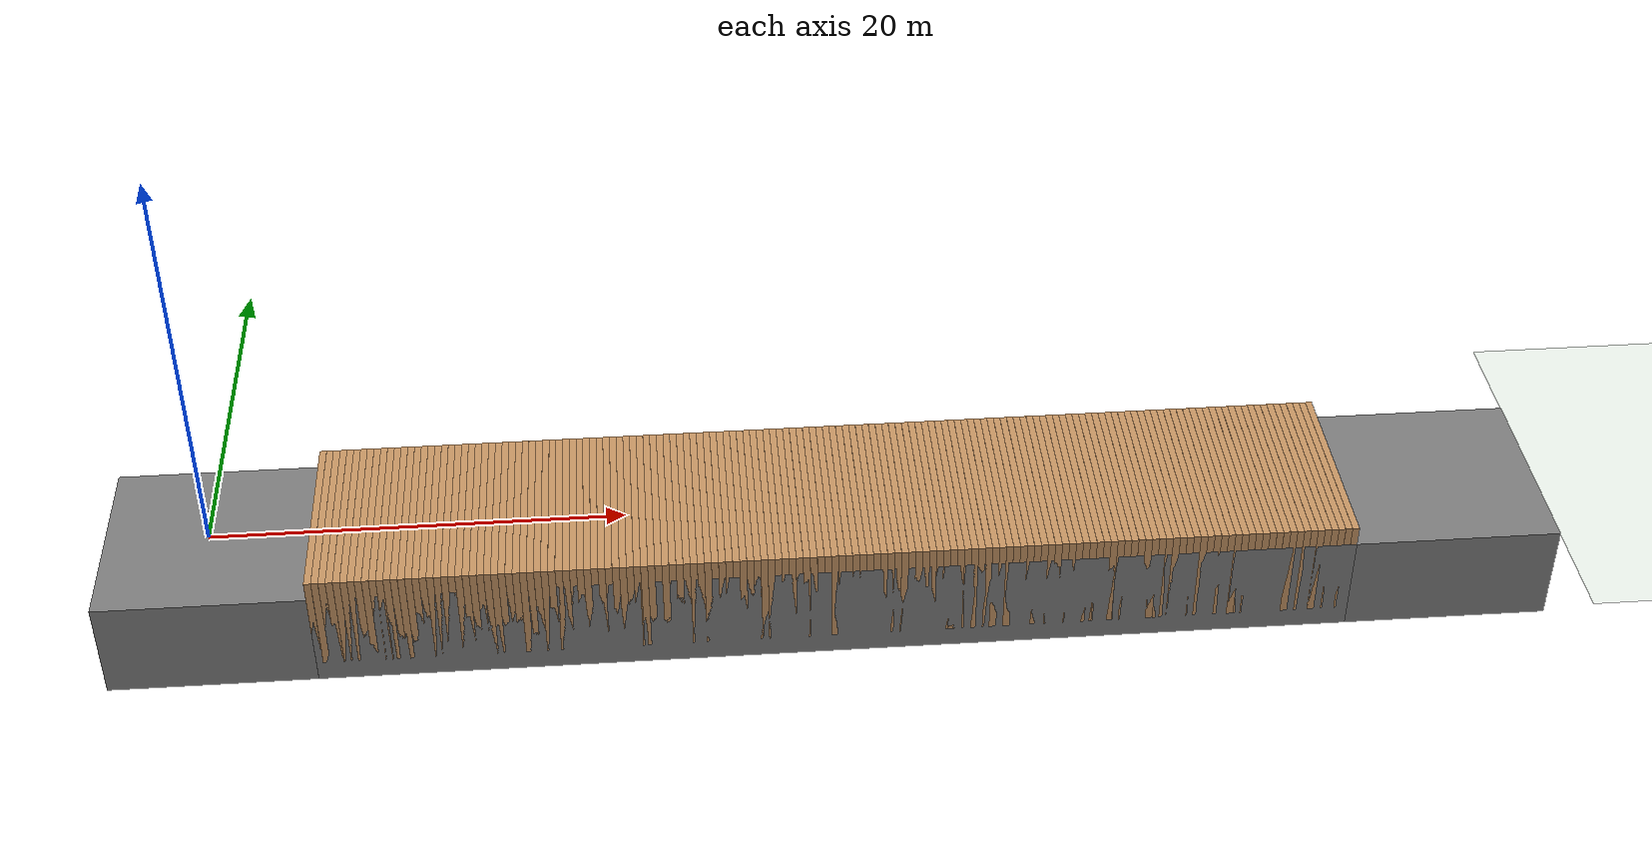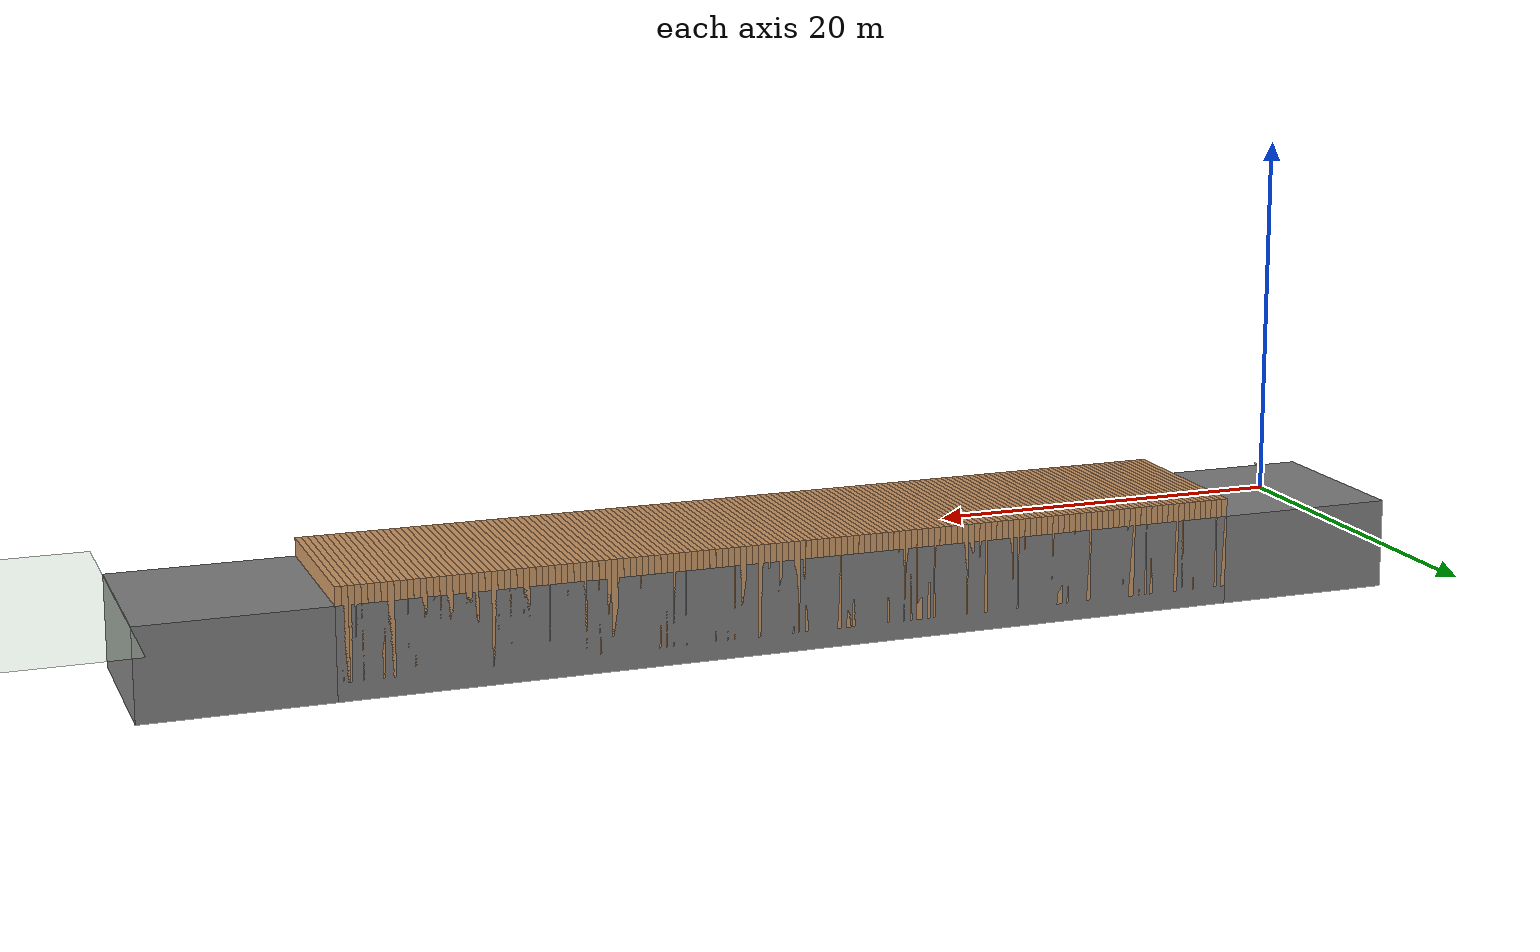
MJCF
<mujoco model="humanoid">
    <compiler angle="degree" inertiafromgeom="true"/>
    <default>
        <joint armature="1" damping="1" limited="true"/>
        <geom conaffinity="1" condim="1" contype="1" margin="0.001" material="geom" rgba="0.8 0.6 .4 1"/>
        <motor ctrllimited="true" ctrlrange="-.4 .4"/>
    </default>
    <option integrator="RK4" iterations="50" solver="PGS" timestep="0.003">
    </option>
    <size nkey="5" nuser_geom="1"/>
    <visual>
        <map fogend="5" fogstart="3"/>
    </visual>
    <asset>
        <texture builtin="gradient" height="100" rgb1=".4 .5 .6" rgb2="0 0 0" type="skybox" width="100"/>
        <texture builtin="flat" height="1278" mark="cross" markrgb="1 1 1" name="texgeom" random="0.01" rgb1="0.8 0.6 0.4" rgb2="0.8 0.6 0.4" type="cube" width="127"/>

        <texture name="texplane_geom" type="cube" mark="cross" builtin="flat" markrgb="0.9 0.9 0.9" rgb1="0.50 0.50 0.50" rgb2="0.50 0.50 0.50" width="512" height="512"/>
        <texture name="texplane" type="2d" builtin="checker" rgb1="0.50 0.50 0.50" rgb2="0.51 0.51 0.51" width="512" height="512"/>
        <material name="MatPlane" reflectance="0.0" shininess="0.0" specular="0.0" texrepeat="60 10" texture="texplane" />

        <material name="geom" texture="texgeom" texuniform="true"/>
        <material name="geom2" texture="texplane" texuniform="true"/>
        <material name="geom3" texture="texplane_geom" texuniform="true" rgba="0.5 0.5 0.5 1"/>
    </asset>
    <worldbody>
        <site name="point_marker0"  pos="0 0 0" size="0.02" rgba="1 0 0 1" type="sphere"/>
        <site name="point_marker1"  pos="0 0 0" size="0.02" rgba="1 0 0 1" type="sphere"/>
        <site name="point_marker2"  pos="0 0 0" size="0.02" rgba="1 0 0 1" type="sphere"/>
        <site name="point_marker3"  pos="0 0 0" size="0.02" rgba="1 0 0 1" type="sphere"/>
        <site name="point_marker4"  pos="0 0 0" size="0.02" rgba="1 0 0 1" type="sphere"/>
        <site name="point_marker5"  pos="0 0 0" size="0.02" rgba="1 0 0 1" type="sphere"/>
        <site name="point_marker6"  pos="0 0 0" size="0.02" rgba="1 0 0 1" type="sphere"/>
        <site name="point_marker7"  pos="0 0 0" size="0.02" rgba="1 0 0 1" type="sphere"/>
        <site name="point_marker8"  pos="0 0 0" size="0.02" rgba="1 0 0 1" type="sphere"/>
        <site name="point_marker9"  pos="0 0 0" size="0.02" rgba="1 0 0 1" type="sphere"/>
        <site name="point_marker10" pos="0 0 0" size="0.02" rgba="1 0 0 1" type="sphere"/>
        <site name="point_marker11" pos="0 0 0" size="0.02" rgba="1 0 0 1" type="sphere"/>
        <site name="point_marker12" pos="0 0 0" size="0.02" rgba="1 0 0 1" type="sphere"/>
        <site name="point_marker13" pos="0 0 0" size="0.02" rgba="1 0 0 1" type="sphere"/>
        <site name="point_marker14" pos="0 0 0" size="0.02" rgba="1 0 0 1" type="sphere"/>
        <site name="point_marker15" pos="0 0 0" size="0.02" rgba="1 0 0 1" type="sphere"/>
        <site name="point_marker16" pos="0 0 0" size="0.02" rgba="1 0 0 1" type="sphere"/>
        <site name="point_marker17" pos="0 0 0" size="0.02" rgba="1 0 0 1" type="sphere"/>
        <site name="point_marker18" pos="0 0 0" size="0.02" rgba="1 0 0 1" type="sphere"/>
        <site name="point_marker19" pos="0 0 0" size="0.02" rgba="1 0 0 1" type="sphere"/>
        <site name="point_marker20" pos="0 0 0" size="0.02" rgba="1 0 0 1" type="sphere"/>
        <site name="point_marker21" pos="0 0 0" size="0.02" rgba="1 0 0 1" type="sphere"/>
        <site name="point_marker22" pos="0 0 0" size="0.02" rgba="1 0 0 1" type="sphere"/>
        <site name="point_marker23" pos="0 0 0" size="0.02" rgba="1 0 0 1" type="sphere"/>
        <site name="point_marker24" pos="0 0 0" size="0.02" rgba="1 0 0 1" type="sphere"/>
        <site name="point_marker25" pos="0 0 0" size="0.02" rgba="1 0 0 1" type="sphere"/>
        <site name="point_marker26" pos="0 0 0" size="0.02" rgba="1 0 0 1" type="sphere"/>
        <site name="point_marker27" pos="0 0 0" size="0.02" rgba="1 0 0 1" type="sphere"/>
        <site name="point_marker28" pos="0 0 0" size="0.02" rgba="1 0 0 1" type="sphere"/>
        <site name="point_marker29" pos="0 0 0" size="0.02" rgba="1 0 0 1" type="sphere"/>

        <!-- Floor -->
        <light cutoff="100" diffuse="1 1 1" dir="-0 0 -1.3" directional="true" exponent="1" pos="0 0 1.3" specular=".1 .1 .1"/>
        <geom condim="3" friction="1 .1 .1" material="MatPlane" name="floor" pos="85 0 0" rgba="0.8 0.9 0.8 1" size="20 10 0.125" type="plane" group="1"/>

        <geom name="wall_l" type="box" material="geom2" pos="30 6 2.5" size="35 1 15" friction="1 .1 .1" group="1" contype="1" conaffinity="1" rgba="0 0 0 0."/>
        <geom name="wall_r" type="box" material="geom2" pos="30 -6 2.5" size="35 1 15" friction="1 .1 .1" group="1" contype="1" conaffinity="1" rgba="0 0 0 0"/>
        <geom name="lidar_block_l" type="box" material="geom2" pos="30 10 17" size="35 5 0.5" friction="1 .1 .1" group="1" contype="1" conaffinity="1" rgba="0 0 0 0"/>
        <geom name="lidar_block_r" type="box" material="geom2" pos="30 -10 17" size="35 5 0.5" friction="1 .1 .1" group="1" contype="1" conaffinity="1" rgba="0 0 0 0"/>
        <geom name="platform_start" type="box" material="geom2" pos="0 0 -2.5" size="5 5 2.5" friction="1 .1 .1" group="1" contype="1" conaffinity="1" condim="3" rgba="0.50 0.50 0.50 1"/>
        <geom name="platform_middle" type="box" material="geom2" pos="30 0 -2.5" size="25 5 2.5" friction="1 .1 .1" group="1" contype="1" conaffinity="1" condim="3" rgba="0.50 0.50 0.50 1"/>
        <geom name="platform_end" type="box" material="geom2" pos="60 0 -2.5" size="5 5 2.5" friction="1 .1 .1" group="1" contype="1" conaffinity="1" condim="3" rgba="0.50 0.50 0.50 1"/>

        <!-- element -->
        <geom name="element_0"   type="box" pos="5.166  0 -1.5" size="0.166 5 2.5" friction="1 .1 .1" group="2" contype="1" material="geom3" conaffinity="1" margin="0.01" solref="0.002 1" solimp="0.9 0.95 0.001"/>
        <geom name="element_1"   type="box" pos="5.500  0 -1.5" size="0.166 5 2.5" friction="1 .1 .1" group="2" contype="1" material="geom3" conaffinity="1" margin="0.01" solref="0.002 1" solimp="0.9 0.95 0.001"/>
        <geom name="element_2"   type="box" pos="5.833  0 -1.5" size="0.166 5 2.5" friction="1 .1 .1" group="2" contype="1" material="geom3" conaffinity="1" margin="0.01" solref="0.002 1" solimp="0.9 0.95 0.001"/>
        <geom name="element_3"   type="box" pos="6.166  0 -1.5" size="0.166 5 2.5" friction="1 .1 .1" group="2" contype="1" material="geom3" conaffinity="1" margin="0.01" solref="0.002 1" solimp="0.9 0.95 0.001"/>
        <geom name="element_4"   type="box" pos="6.500  0 -1.5" size="0.166 5 2.5" friction="1 .1 .1" group="2" contype="1" material="geom3" conaffinity="1" margin="0.01" solref="0.002 1" solimp="0.9 0.95 0.001"/>
        <geom name="element_5"   type="box" pos="6.833  0 -1.5" size="0.166 5 2.5" friction="1 .1 .1" group="2" contype="1" material="geom3" conaffinity="1" margin="0.01" solref="0.002 1" solimp="0.9 0.95 0.001"/>
        <geom name="element_6"   type="box" pos="7.166  0 -1.5" size="0.166 5 2.5" friction="1 .1 .1" group="2" contype="1" material="geom3" conaffinity="1" margin="0.01" solref="0.002 1" solimp="0.9 0.95 0.001"/>
        <geom name="element_7"   type="box" pos="7.500  0 -1.5" size="0.166 5 2.5" friction="1 .1 .1" group="2" contype="1" material="geom3" conaffinity="1" margin="0.01" solref="0.002 1" solimp="0.9 0.95 0.001"/>
        <geom name="element_8"   type="box" pos="7.833  0 -1.5" size="0.166 5 2.5" friction="1 .1 .1" group="2" contype="1" material="geom3" conaffinity="1" margin="0.01" solref="0.002 1" solimp="0.9 0.95 0.001"/>
        <geom name="element_9"   type="box" pos="8.166  0 -1.5" size="0.166 5 2.5" friction="1 .1 .1" group="2" contype="1" material="geom3" conaffinity="1" margin="0.01" solref="0.002 1" solimp="0.9 0.95 0.001"/>
        <geom name="element_10"  type="box" pos="8.500  0 -1.5" size="0.166 5 2.5" friction="1 .1 .1" group="2" contype="1" material="geom3" conaffinity="1" margin="0.01" solref="0.002 1" solimp="0.9 0.95 0.001"/>
        <geom name="element_11"  type="box" pos="8.833  0 -1.5" size="0.166 5 2.5" friction="1 .1 .1" group="2" contype="1" material="geom3" conaffinity="1" margin="0.01" solref="0.002 1" solimp="0.9 0.95 0.001"/>
        <geom name="element_12"  type="box" pos="9.166  0 -1.5" size="0.166 5 2.5" friction="1 .1 .1" group="2" contype="1" material="geom3" conaffinity="1" margin="0.01" solref="0.002 1" solimp="0.9 0.95 0.001"/>
        <geom name="element_13"  type="box" pos="9.500  0 -1.5" size="0.166 5 2.5" friction="1 .1 .1" group="2" contype="1" material="geom3" conaffinity="1" margin="0.01" solref="0.002 1" solimp="0.9 0.95 0.001"/>
        <geom name="element_14"  type="box" pos="9.833  0 -1.5" size="0.166 5 2.5" friction="1 .1 .1" group="2" contype="1" material="geom3" conaffinity="1" margin="0.01" solref="0.002 1" solimp="0.9 0.95 0.001"/>
        <geom name="element_15"  type="box" pos="10.166 0 -1.5" size="0.166 5 2.5" friction="1 .1 .1" group="2" contype="1" material="geom3" conaffinity="1" margin="0.01" solref="0.002 1" solimp="0.9 0.95 0.001"/>
        <geom name="element_16"  type="box" pos="10.500 0 -1.5" size="0.166 5 2.5" friction="1 .1 .1" group="2" contype="1" material="geom3" conaffinity="1" margin="0.01" solref="0.002 1" solimp="0.9 0.95 0.001"/>
        <geom name="element_17"  type="box" pos="10.833 0 -1.5" size="0.166 5 2.5" friction="1 .1 .1" group="2" contype="1" material="geom3" conaffinity="1" margin="0.01" solref="0.002 1" solimp="0.9 0.95 0.001"/>
        <geom name="element_18"  type="box" pos="11.166 0 -1.5" size="0.166 5 2.5" friction="1 .1 .1" group="2" contype="1" material="geom3" conaffinity="1" margin="0.01" solref="0.002 1" solimp="0.9 0.95 0.001"/>
        <geom name="element_19"  type="box" pos="11.500 0 -1.5" size="0.166 5 2.5" friction="1 .1 .1" group="2" contype="1" material="geom3" conaffinity="1" margin="0.01" solref="0.002 1" solimp="0.9 0.95 0.001"/>
        <geom name="element_20"  type="box" pos="11.833 0 -1.5" size="0.166 5 2.5" friction="1 .1 .1" group="2" contype="1" material="geom3" conaffinity="1" margin="0.01" solref="0.002 1" solimp="0.9 0.95 0.001"/>
        <geom name="element_21"  type="box" pos="12.166 0 -1.5" size="0.166 5 2.5" friction="1 .1 .1" group="2" contype="1" material="geom3" conaffinity="1" margin="0.01" solref="0.002 1" solimp="0.9 0.95 0.001"/>
        <geom name="element_22"  type="box" pos="12.500 0 -1.5" size="0.166 5 2.5" friction="1 .1 .1" group="2" contype="1" material="geom3" conaffinity="1" margin="0.01" solref="0.002 1" solimp="0.9 0.95 0.001"/>
        <geom name="element_23"  type="box" pos="12.833 0 -1.5" size="0.166 5 2.5" friction="1 .1 .1" group="2" contype="1" material="geom3" conaffinity="1" margin="0.01" solref="0.002 1" solimp="0.9 0.95 0.001"/>
        <geom name="element_24"  type="box" pos="13.166 0 -1.5" size="0.166 5 2.5" friction="1 .1 .1" group="2" contype="1" material="geom3" conaffinity="1" margin="0.01" solref="0.002 1" solimp="0.9 0.95 0.001"/>
        <geom name="element_25"  type="box" pos="13.500 0 -1.5" size="0.166 5 2.5" friction="1 .1 .1" group="2" contype="1" material="geom3" conaffinity="1" margin="0.01" solref="0.002 1" solimp="0.9 0.95 0.001"/>
        <geom name="element_26"  type="box" pos="13.833 0 -1.5" size="0.166 5 2.5" friction="1 .1 .1" group="2" contype="1" material="geom3" conaffinity="1" margin="0.01" solref="0.002 1" solimp="0.9 0.95 0.001"/>
        <geom name="element_27"  type="box" pos="14.166 0 -1.5" size="0.166 5 2.5" friction="1 .1 .1" group="2" contype="1" material="geom3" conaffinity="1" margin="0.01" solref="0.002 1" solimp="0.9 0.95 0.001"/>
        <geom name="element_28"  type="box" pos="14.500 0 -1.5" size="0.166 5 2.5" friction="1 .1 .1" group="2" contype="1" material="geom3" conaffinity="1" margin="0.01" solref="0.002 1" solimp="0.9 0.95 0.001"/>
        <geom name="element_29"  type="box" pos="14.833 0 -1.5" size="0.166 5 2.5" friction="1 .1 .1" group="2" contype="1" material="geom3" conaffinity="1" margin="0.01" solref="0.002 1" solimp="0.9 0.95 0.001"/>
        <geom name="element_30"  type="box" pos="15.166 0 -1.5" size="0.166 5 2.5" friction="1 .1 .1" group="2" contype="1" material="geom3" conaffinity="1" margin="0.01" solref="0.002 1" solimp="0.9 0.95 0.001"/>
        <geom name="element_31"  type="box" pos="15.500 0 -1.5" size="0.166 5 2.5" friction="1 .1 .1" group="2" contype="1" material="geom3" conaffinity="1" margin="0.01" solref="0.002 1" solimp="0.9 0.95 0.001"/>
        <geom name="element_32"  type="box" pos="15.833 0 -1.5" size="0.166 5 2.5" friction="1 .1 .1" group="2" contype="1" material="geom3" conaffinity="1" margin="0.01" solref="0.002 1" solimp="0.9 0.95 0.001"/>
        <geom name="element_33"  type="box" pos="16.166 0 -1.5" size="0.166 5 2.5" friction="1 .1 .1" group="2" contype="1" material="geom3" conaffinity="1" margin="0.01" solref="0.002 1" solimp="0.9 0.95 0.001"/>
        <geom name="element_34"  type="box" pos="16.500 0 -1.5" size="0.166 5 2.5" friction="1 .1 .1" group="2" contype="1" material="geom3" conaffinity="1" margin="0.01" solref="0.002 1" solimp="0.9 0.95 0.001"/>
        <geom name="element_35"  type="box" pos="16.833 0 -1.5" size="0.166 5 2.5" friction="1 .1 .1" group="2" contype="1" material="geom3" conaffinity="1" margin="0.01" solref="0.002 1" solimp="0.9 0.95 0.001"/>
        <geom name="element_36"  type="box" pos="17.166 0 -1.5" size="0.166 5 2.5" friction="1 .1 .1" group="2" contype="1" material="geom3" conaffinity="1" margin="0.01" solref="0.002 1" solimp="0.9 0.95 0.001"/>
        <geom name="element_37"  type="box" pos="17.500 0 -1.5" size="0.166 5 2.5" friction="1 .1 .1" group="2" contype="1" material="geom3" conaffinity="1" margin="0.01" solref="0.002 1" solimp="0.9 0.95 0.001"/>
        <geom name="element_38"  type="box" pos="17.833 0 -1.5" size="0.166 5 2.5" friction="1 .1 .1" group="2" contype="1" material="geom3" conaffinity="1" margin="0.01" solref="0.002 1" solimp="0.9 0.95 0.001"/>
        <geom name="element_39"  type="box" pos="18.166 0 -1.5" size="0.166 5 2.5" friction="1 .1 .1" group="2" contype="1" material="geom3" conaffinity="1" margin="0.01" solref="0.002 1" solimp="0.9 0.95 0.001"/>
        <geom name="element_40"  type="box" pos="18.500 0 -1.5" size="0.166 5 2.5" friction="1 .1 .1" group="2" contype="1" material="geom3" conaffinity="1" margin="0.01" solref="0.002 1" solimp="0.9 0.95 0.001"/>
        <geom name="element_41"  type="box" pos="18.833 0 -1.5" size="0.166 5 2.5" friction="1 .1 .1" group="2" contype="1" material="geom3" conaffinity="1" margin="0.01" solref="0.002 1" solimp="0.9 0.95 0.001"/>
        <geom name="element_42"  type="box" pos="19.166 0 -1.5" size="0.166 5 2.5" friction="1 .1 .1" group="2" contype="1" material="geom3" conaffinity="1" margin="0.01" solref="0.002 1" solimp="0.9 0.95 0.001"/>
        <geom name="element_43"  type="box" pos="19.500 0 -1.5" size="0.166 5 2.5" friction="1 .1 .1" group="2" contype="1" material="geom3" conaffinity="1" margin="0.01" solref="0.002 1" solimp="0.9 0.95 0.001"/>
        <geom name="element_44"  type="box" pos="19.833 0 -1.5" size="0.166 5 2.5" friction="1 .1 .1" group="2" contype="1" material="geom3" conaffinity="1" margin="0.01" solref="0.002 1" solimp="0.9 0.95 0.001"/>
        <geom name="element_45"  type="box" pos="20.166 0 -1.5" size="0.166 5 2.5" friction="1 .1 .1" group="2" contype="1" material="geom3" conaffinity="1" margin="0.01" solref="0.002 1" solimp="0.9 0.95 0.001"/>
        <geom name="element_46"  type="box" pos="20.500 0 -1.5" size="0.166 5 2.5" friction="1 .1 .1" group="2" contype="1" material="geom3" conaffinity="1" margin="0.01" solref="0.002 1" solimp="0.9 0.95 0.001"/>
        <geom name="element_47"  type="box" pos="20.833 0 -1.5" size="0.166 5 2.5" friction="1 .1 .1" group="2" contype="1" material="geom3" conaffinity="1" margin="0.01" solref="0.002 1" solimp="0.9 0.95 0.001"/>
        <geom name="element_48"  type="box" pos="21.166 0 -1.5" size="0.166 5 2.5" friction="1 .1 .1" group="2" contype="1" material="geom3" conaffinity="1" margin="0.01" solref="0.002 1" solimp="0.9 0.95 0.001"/>
        <geom name="element_49"  type="box" pos="21.500 0 -1.5" size="0.166 5 2.5" friction="1 .1 .1" group="2" contype="1" material="geom3" conaffinity="1" margin="0.01" solref="0.002 1" solimp="0.9 0.95 0.001"/>
        <geom name="element_50"  type="box" pos="21.833 0 -1.5" size="0.166 5 2.5" friction="1 .1 .1" group="2" contype="1" material="geom3" conaffinity="1" margin="0.01" solref="0.002 1" solimp="0.9 0.95 0.001"/>
        <geom name="element_51"  type="box" pos="22.166 0 -1.5" size="0.166 5 2.5" friction="1 .1 .1" group="2" contype="1" material="geom3" conaffinity="1" margin="0.01" solref="0.002 1" solimp="0.9 0.95 0.001"/>
        <geom name="element_52"  type="box" pos="22.500 0 -1.5" size="0.166 5 2.5" friction="1 .1 .1" group="2" contype="1" material="geom3" conaffinity="1" margin="0.01" solref="0.002 1" solimp="0.9 0.95 0.001"/>
        <geom name="element_53"  type="box" pos="22.833 0 -1.5" size="0.166 5 2.5" friction="1 .1 .1" group="2" contype="1" material="geom3" conaffinity="1" margin="0.01" solref="0.002 1" solimp="0.9 0.95 0.001"/>
        <geom name="element_54"  type="box" pos="23.166 0 -1.5" size="0.166 5 2.5" friction="1 .1 .1" group="2" contype="1" material="geom3" conaffinity="1" margin="0.01" solref="0.002 1" solimp="0.9 0.95 0.001"/>
        <geom name="element_55"  type="box" pos="23.500 0 -1.5" size="0.166 5 2.5" friction="1 .1 .1" group="2" contype="1" material="geom3" conaffinity="1" margin="0.01" solref="0.002 1" solimp="0.9 0.95 0.001"/>
        <geom name="element_56"  type="box" pos="23.833 0 -1.5" size="0.166 5 2.5" friction="1 .1 .1" group="2" contype="1" material="geom3" conaffinity="1" margin="0.01" solref="0.002 1" solimp="0.9 0.95 0.001"/>
        <geom name="element_57"  type="box" pos="24.166 0 -1.5" size="0.166 5 2.5" friction="1 .1 .1" group="2" contype="1" material="geom3" conaffinity="1" margin="0.01" solref="0.002 1" solimp="0.9 0.95 0.001"/>
        <geom name="element_58"  type="box" pos="24.500 0 -1.5" size="0.166 5 2.5" friction="1 .1 .1" group="2" contype="1" material="geom3" conaffinity="1" margin="0.01" solref="0.002 1" solimp="0.9 0.95 0.001"/>
        <geom name="element_59"  type="box" pos="24.833 0 -1.5" size="0.166 5 2.5" friction="1 .1 .1" group="2" contype="1" material="geom3" conaffinity="1" margin="0.01" solref="0.002 1" solimp="0.9 0.95 0.001"/>
        <geom name="element_60"  type="box" pos="25.166 0 -1.5" size="0.166 5 2.5" friction="1 .1 .1" group="2" contype="1" material="geom3" conaffinity="1" margin="0.01" solref="0.002 1" solimp="0.9 0.95 0.001"/>
        <geom name="element_61"  type="box" pos="25.500 0 -1.5" size="0.166 5 2.5" friction="1 .1 .1" group="2" contype="1" material="geom3" conaffinity="1" margin="0.01" solref="0.002 1" solimp="0.9 0.95 0.001"/>
        <geom name="element_62"  type="box" pos="25.833 0 -1.5" size="0.166 5 2.5" friction="1 .1 .1" group="2" contype="1" material="geom3" conaffinity="1" margin="0.01" solref="0.002 1" solimp="0.9 0.95 0.001"/>
        <geom name="element_63"  type="box" pos="26.166 0 -1.5" size="0.166 5 2.5" friction="1 .1 .1" group="2" contype="1" material="geom3" conaffinity="1" margin="0.01" solref="0.002 1" solimp="0.9 0.95 0.001"/>
        <geom name="element_64"  type="box" pos="26.500 0 -1.5" size="0.166 5 2.5" friction="1 .1 .1" group="2" contype="1" material="geom3" conaffinity="1" margin="0.01" solref="0.002 1" solimp="0.9 0.95 0.001"/>
        <geom name="element_65"  type="box" pos="26.833 0 -1.5" size="0.166 5 2.5" friction="1 .1 .1" group="2" contype="1" material="geom3" conaffinity="1" margin="0.01" solref="0.002 1" solimp="0.9 0.95 0.001"/>
        <geom name="element_66"  type="box" pos="27.166 0 -1.5" size="0.166 5 2.5" friction="1 .1 .1" group="2" contype="1" material="geom3" conaffinity="1" margin="0.01" solref="0.002 1" solimp="0.9 0.95 0.001"/>
        <geom name="element_67"  type="box" pos="27.500 0 -1.5" size="0.166 5 2.5" friction="1 .1 .1" group="2" contype="1" material="geom3" conaffinity="1" margin="0.01" solref="0.002 1" solimp="0.9 0.95 0.001"/>
        <geom name="element_68"  type="box" pos="27.833 0 -1.5" size="0.166 5 2.5" friction="1 .1 .1" group="2" contype="1" material="geom3" conaffinity="1" margin="0.01" solref="0.002 1" solimp="0.9 0.95 0.001"/>
        <geom name="element_69"  type="box" pos="28.166 0 -1.5" size="0.166 5 2.5" friction="1 .1 .1" group="2" contype="1" material="geom3" conaffinity="1" margin="0.01" solref="0.002 1" solimp="0.9 0.95 0.001"/>
        <geom name="element_70"  type="box" pos="28.500 0 -1.5" size="0.166 5 2.5" friction="1 .1 .1" group="2" contype="1" material="geom3" conaffinity="1" margin="0.01" solref="0.002 1" solimp="0.9 0.95 0.001"/>
        <geom name="element_71"  type="box" pos="28.833 0 -1.5" size="0.166 5 2.5" friction="1 .1 .1" group="2" contype="1" material="geom3" conaffinity="1" margin="0.01" solref="0.002 1" solimp="0.9 0.95 0.001"/>
        <geom name="element_72"  type="box" pos="29.166 0 -1.5" size="0.166 5 2.5" friction="1 .1 .1" group="2" contype="1" material="geom3" conaffinity="1" margin="0.01" solref="0.002 1" solimp="0.9 0.95 0.001"/>
        <geom name="element_73"  type="box" pos="29.500 0 -1.5" size="0.166 5 2.5" friction="1 .1 .1" group="2" contype="1" material="geom3" conaffinity="1" margin="0.01" solref="0.002 1" solimp="0.9 0.95 0.001"/>
        <geom name="element_74"  type="box" pos="29.833 0 -1.5" size="0.166 5 2.5" friction="1 .1 .1" group="2" contype="1" material="geom3" conaffinity="1" margin="0.01" solref="0.002 1" solimp="0.9 0.95 0.001"/>
        <geom name="element_75"  type="box" pos="30.166 0 -1.5" size="0.166 5 2.5" friction="1 .1 .1" group="2" contype="1" material="geom3" conaffinity="1" margin="0.01" solref="0.002 1" solimp="0.9 0.95 0.001"/>
        <geom name="element_76"  type="box" pos="30.500 0 -1.5" size="0.166 5 2.5" friction="1 .1 .1" group="2" contype="1" material="geom3" conaffinity="1" margin="0.01" solref="0.002 1" solimp="0.9 0.95 0.001"/>
        <geom name="element_77"  type="box" pos="30.833 0 -1.5" size="0.166 5 2.5" friction="1 .1 .1" group="2" contype="1" material="geom3" conaffinity="1" margin="0.01" solref="0.002 1" solimp="0.9 0.95 0.001"/>
        <geom name="element_78"  type="box" pos="31.166 0 -1.5" size="0.166 5 2.5" friction="1 .1 .1" group="2" contype="1" material="geom3" conaffinity="1" margin="0.01" solref="0.002 1" solimp="0.9 0.95 0.001"/>
        <geom name="element_79"  type="box" pos="31.500 0 -1.5" size="0.166 5 2.5" friction="1 .1 .1" group="2" contype="1" material="geom3" conaffinity="1" margin="0.01" solref="0.002 1" solimp="0.9 0.95 0.001"/>
        <geom name="element_80"  type="box" pos="31.833 0 -1.5" size="0.166 5 2.5" friction="1 .1 .1" group="2" contype="1" material="geom3" conaffinity="1" margin="0.01" solref="0.002 1" solimp="0.9 0.95 0.001"/>
        <geom name="element_81"  type="box" pos="32.166 0 -1.5" size="0.166 5 2.5" friction="1 .1 .1" group="2" contype="1" material="geom3" conaffinity="1" margin="0.01" solref="0.002 1" solimp="0.9 0.95 0.001"/>
        <geom name="element_82"  type="box" pos="32.500 0 -1.5" size="0.166 5 2.5" friction="1 .1 .1" group="2" contype="1" material="geom3" conaffinity="1" margin="0.01" solref="0.002 1" solimp="0.9 0.95 0.001"/>
        <geom name="element_83"  type="box" pos="32.833 0 -1.5" size="0.166 5 2.5" friction="1 .1 .1" group="2" contype="1" material="geom3" conaffinity="1" margin="0.01" solref="0.002 1" solimp="0.9 0.95 0.001"/>
        <geom name="element_84"  type="box" pos="33.166 0 -1.5" size="0.166 5 2.5" friction="1 .1 .1" group="2" contype="1" material="geom3" conaffinity="1" margin="0.01" solref="0.002 1" solimp="0.9 0.95 0.001"/>
        <geom name="element_85"  type="box" pos="33.500 0 -1.5" size="0.166 5 2.5" friction="1 .1 .1" group="2" contype="1" material="geom3" conaffinity="1" margin="0.01" solref="0.002 1" solimp="0.9 0.95 0.001"/>
        <geom name="element_86"  type="box" pos="33.833 0 -1.5" size="0.166 5 2.5" friction="1 .1 .1" group="2" contype="1" material="geom3" conaffinity="1" margin="0.01" solref="0.002 1" solimp="0.9 0.95 0.001"/>
        <geom name="element_87"  type="box" pos="34.166 0 -1.5" size="0.166 5 2.5" friction="1 .1 .1" group="2" contype="1" material="geom3" conaffinity="1" margin="0.01" solref="0.002 1" solimp="0.9 0.95 0.001"/>
        <geom name="element_88"  type="box" pos="34.500 0 -1.5" size="0.166 5 2.5" friction="1 .1 .1" group="2" contype="1" material="geom3" conaffinity="1" margin="0.01" solref="0.002 1" solimp="0.9 0.95 0.001"/>
        <geom name="element_89"  type="box" pos="34.833 0 -1.5" size="0.166 5 2.5" friction="1 .1 .1" group="2" contype="1" material="geom3" conaffinity="1" margin="0.01" solref="0.002 1" solimp="0.9 0.95 0.001"/>
        <geom name="element_90"  type="box" pos="35.166 0 -1.5" size="0.166 5 2.5" friction="1 .1 .1" group="2" contype="1" material="geom3" conaffinity="1" margin="0.01" solref="0.002 1" solimp="0.9 0.95 0.001"/>
        <geom name="element_91"  type="box" pos="35.500 0 -1.5" size="0.166 5 2.5" friction="1 .1 .1" group="2" contype="1" material="geom3" conaffinity="1" margin="0.01" solref="0.002 1" solimp="0.9 0.95 0.001"/>
        <geom name="element_92"  type="box" pos="35.833 0 -1.5" size="0.166 5 2.5" friction="1 .1 .1" group="2" contype="1" material="geom3" conaffinity="1" margin="0.01" solref="0.002 1" solimp="0.9 0.95 0.001"/>
        <geom name="element_93"  type="box" pos="36.166 0 -1.5" size="0.166 5 2.5" friction="1 .1 .1" group="2" contype="1" material="geom3" conaffinity="1" margin="0.01" solref="0.002 1" solimp="0.9 0.95 0.001"/>
        <geom name="element_94"  type="box" pos="36.500 0 -1.5" size="0.166 5 2.5" friction="1 .1 .1" group="2" contype="1" material="geom3" conaffinity="1" margin="0.01" solref="0.002 1" solimp="0.9 0.95 0.001"/>
        <geom name="element_95"  type="box" pos="36.833 0 -1.5" size="0.166 5 2.5" friction="1 .1 .1" group="2" contype="1" material="geom3" conaffinity="1" margin="0.01" solref="0.002 1" solimp="0.9 0.95 0.001"/>
        <geom name="element_96"  type="box" pos="37.166 0 -1.5" size="0.166 5 2.5" friction="1 .1 .1" group="2" contype="1" material="geom3" conaffinity="1" margin="0.01" solref="0.002 1" solimp="0.9 0.95 0.001"/>
        <geom name="element_97"  type="box" pos="37.500 0 -1.5" size="0.166 5 2.5" friction="1 .1 .1" group="2" contype="1" material="geom3" conaffinity="1" margin="0.01" solref="0.002 1" solimp="0.9 0.95 0.001"/>
        <geom name="element_98"  type="box" pos="37.833 0 -1.5" size="0.166 5 2.5" friction="1 .1 .1" group="2" contype="1" material="geom3" conaffinity="1" margin="0.01" solref="0.002 1" solimp="0.9 0.95 0.001"/>
        <geom name="element_99"  type="box" pos="38.166 0 -1.5" size="0.166 5 2.5" friction="1 .1 .1" group="2" contype="1" material="geom3" conaffinity="1" margin="0.01" solref="0.002 1" solimp="0.9 0.95 0.001"/>
        <geom name="element_100" type="box" pos="38.500 0 -1.5" size="0.166 5 2.5" friction="1 .1 .1" group="2" contype="1" material="geom3" conaffinity="1" margin="0.01" solref="0.002 1" solimp="0.9 0.95 0.001"/>
        <geom name="element_101" type="box" pos="38.833 0 -1.5" size="0.166 5 2.5" friction="1 .1 .1" group="2" contype="1" material="geom3" conaffinity="1" margin="0.01" solref="0.002 1" solimp="0.9 0.95 0.001"/>
        <geom name="element_102" type="box" pos="39.166 0 -1.5" size="0.166 5 2.5" friction="1 .1 .1" group="2" contype="1" material="geom3" conaffinity="1" margin="0.01" solref="0.002 1" solimp="0.9 0.95 0.001"/>
        <geom name="element_103" type="box" pos="39.500 0 -1.5" size="0.166 5 2.5" friction="1 .1 .1" group="2" contype="1" material="geom3" conaffinity="1" margin="0.01" solref="0.002 1" solimp="0.9 0.95 0.001"/>
        <geom name="element_104" type="box" pos="39.833 0 -1.5" size="0.166 5 2.5" friction="1 .1 .1" group="2" contype="1" material="geom3" conaffinity="1" margin="0.01" solref="0.002 1" solimp="0.9 0.95 0.001"/>
        <geom name="element_105" type="box" pos="40.166 0 -1.5" size="0.166 5 2.5" friction="1 .1 .1" group="2" contype="1" material="geom3" conaffinity="1" margin="0.01" solref="0.002 1" solimp="0.9 0.95 0.001"/>
        <geom name="element_106" type="box" pos="40.500 0 -1.5" size="0.166 5 2.5" friction="1 .1 .1" group="2" contype="1" material="geom3" conaffinity="1" margin="0.01" solref="0.002 1" solimp="0.9 0.95 0.001"/>
        <geom name="element_107" type="box" pos="40.833 0 -1.5" size="0.166 5 2.5" friction="1 .1 .1" group="2" contype="1" material="geom3" conaffinity="1" margin="0.01" solref="0.002 1" solimp="0.9 0.95 0.001"/>
        <geom name="element_108" type="box" pos="41.166 0 -1.5" size="0.166 5 2.5" friction="1 .1 .1" group="2" contype="1" material="geom3" conaffinity="1" margin="0.01" solref="0.002 1" solimp="0.9 0.95 0.001"/>
        <geom name="element_109" type="box" pos="41.500 0 -1.5" size="0.166 5 2.5" friction="1 .1 .1" group="2" contype="1" material="geom3" conaffinity="1" margin="0.01" solref="0.002 1" solimp="0.9 0.95 0.001"/>
        <geom name="element_110" type="box" pos="41.833 0 -1.5" size="0.166 5 2.5" friction="1 .1 .1" group="2" contype="1" material="geom3" conaffinity="1" margin="0.01" solref="0.002 1" solimp="0.9 0.95 0.001"/>
        <geom name="element_111" type="box" pos="42.166 0 -1.5" size="0.166 5 2.5" friction="1 .1 .1" group="2" contype="1" material="geom3" conaffinity="1" margin="0.01" solref="0.002 1" solimp="0.9 0.95 0.001"/>
        <geom name="element_112" type="box" pos="42.500 0 -1.5" size="0.166 5 2.5" friction="1 .1 .1" group="2" contype="1" material="geom3" conaffinity="1" margin="0.01" solref="0.002 1" solimp="0.9 0.95 0.001"/>
        <geom name="element_113" type="box" pos="42.833 0 -1.5" size="0.166 5 2.5" friction="1 .1 .1" group="2" contype="1" material="geom3" conaffinity="1" margin="0.01" solref="0.002 1" solimp="0.9 0.95 0.001"/>
        <geom name="element_114" type="box" pos="43.166 0 -1.5" size="0.166 5 2.5" friction="1 .1 .1" group="2" contype="1" material="geom3" conaffinity="1" margin="0.01" solref="0.002 1" solimp="0.9 0.95 0.001"/>
        <geom name="element_115" type="box" pos="43.500 0 -1.5" size="0.166 5 2.5" friction="1 .1 .1" group="2" contype="1" material="geom3" conaffinity="1" margin="0.01" solref="0.002 1" solimp="0.9 0.95 0.001"/>
        <geom name="element_116" type="box" pos="43.833 0 -1.5" size="0.166 5 2.5" friction="1 .1 .1" group="2" contype="1" material="geom3" conaffinity="1" margin="0.01" solref="0.002 1" solimp="0.9 0.95 0.001"/>
        <geom name="element_117" type="box" pos="44.166 0 -1.5" size="0.166 5 2.5" friction="1 .1 .1" group="2" contype="1" material="geom3" conaffinity="1" margin="0.01" solref="0.002 1" solimp="0.9 0.95 0.001"/>
        <geom name="element_118" type="box" pos="44.500 0 -1.5" size="0.166 5 2.5" friction="1 .1 .1" group="2" contype="1" material="geom3" conaffinity="1" margin="0.01" solref="0.002 1" solimp="0.9 0.95 0.001"/>
        <geom name="element_119" type="box" pos="44.833 0 -1.5" size="0.166 5 2.5" friction="1 .1 .1" group="2" contype="1" material="geom3" conaffinity="1" margin="0.01" solref="0.002 1" solimp="0.9 0.95 0.001"/>
        <geom name="element_120" type="box" pos="45.166 0 -1.5" size="0.166 5 2.5" friction="1 .1 .1" group="2" contype="1" material="geom3" conaffinity="1" margin="0.01" solref="0.002 1" solimp="0.9 0.95 0.001"/>
        <geom name="element_121" type="box" pos="45.500 0 -1.5" size="0.166 5 2.5" friction="1 .1 .1" group="2" contype="1" material="geom3" conaffinity="1" margin="0.01" solref="0.002 1" solimp="0.9 0.95 0.001"/>
        <geom name="element_122" type="box" pos="45.833 0 -1.5" size="0.166 5 2.5" friction="1 .1 .1" group="2" contype="1" material="geom3" conaffinity="1" margin="0.01" solref="0.002 1" solimp="0.9 0.95 0.001"/>
        <geom name="element_123" type="box" pos="46.166 0 -1.5" size="0.166 5 2.5" friction="1 .1 .1" group="2" contype="1" material="geom3" conaffinity="1" margin="0.01" solref="0.002 1" solimp="0.9 0.95 0.001"/>
        <geom name="element_124" type="box" pos="46.500 0 -1.5" size="0.166 5 2.5" friction="1 .1 .1" group="2" contype="1" material="geom3" conaffinity="1" margin="0.01" solref="0.002 1" solimp="0.9 0.95 0.001"/>
        <geom name="element_125" type="box" pos="46.833 0 -1.5" size="0.166 5 2.5" friction="1 .1 .1" group="2" contype="1" material="geom3" conaffinity="1" margin="0.01" solref="0.002 1" solimp="0.9 0.95 0.001"/>
        <geom name="element_126" type="box" pos="47.166 0 -1.5" size="0.166 5 2.5" friction="1 .1 .1" group="2" contype="1" material="geom3" conaffinity="1" margin="0.01" solref="0.002 1" solimp="0.9 0.95 0.001"/>
        <geom name="element_127" type="box" pos="47.500 0 -1.5" size="0.166 5 2.5" friction="1 .1 .1" group="2" contype="1" material="geom3" conaffinity="1" margin="0.01" solref="0.002 1" solimp="0.9 0.95 0.001"/>
        <geom name="element_128" type="box" pos="47.833 0 -1.5" size="0.166 5 2.5" friction="1 .1 .1" group="2" contype="1" material="geom3" conaffinity="1" margin="0.01" solref="0.002 1" solimp="0.9 0.95 0.001"/>
        <geom name="element_129" type="box" pos="48.166 0 -1.5" size="0.166 5 2.5" friction="1 .1 .1" group="2" contype="1" material="geom3" conaffinity="1" margin="0.01" solref="0.002 1" solimp="0.9 0.95 0.001"/>
        <geom name="element_130" type="box" pos="48.500 0 -1.5" size="0.166 5 2.5" friction="1 .1 .1" group="2" contype="1" material="geom3" conaffinity="1" margin="0.01" solref="0.002 1" solimp="0.9 0.95 0.001"/>
        <geom name="element_131" type="box" pos="48.833 0 -1.5" size="0.166 5 2.5" friction="1 .1 .1" group="2" contype="1" material="geom3" conaffinity="1" margin="0.01" solref="0.002 1" solimp="0.9 0.95 0.001"/>
        <geom name="element_132" type="box" pos="49.166 0 -1.5" size="0.166 5 2.5" friction="1 .1 .1" group="2" contype="1" material="geom3" conaffinity="1" margin="0.01" solref="0.002 1" solimp="0.9 0.95 0.001"/>
        <geom name="element_133" type="box" pos="49.500 0 -1.5" size="0.166 5 2.5" friction="1 .1 .1" group="2" contype="1" material="geom3" conaffinity="1" margin="0.01" solref="0.002 1" solimp="0.9 0.95 0.001"/>
        <geom name="element_134" type="box" pos="49.833 0 -1.5" size="0.166 5 2.5" friction="1 .1 .1" group="2" contype="1" material="geom3" conaffinity="1" margin="0.01" solref="0.002 1" solimp="0.9 0.95 0.001"/>
        <geom name="element_135" type="box" pos="50.166 0 -1.5" size="0.166 5 2.5" friction="1 .1 .1" group="2" contype="1" material="geom3" conaffinity="1" margin="0.01" solref="0.002 1" solimp="0.9 0.95 0.001"/>
        <geom name="element_136" type="box" pos="50.500 0 -1.5" size="0.166 5 2.5" friction="1 .1 .1" group="2" contype="1" material="geom3" conaffinity="1" margin="0.01" solref="0.002 1" solimp="0.9 0.95 0.001"/>
        <geom name="element_137" type="box" pos="50.833 0 -1.5" size="0.166 5 2.5" friction="1 .1 .1" group="2" contype="1" material="geom3" conaffinity="1" margin="0.01" solref="0.002 1" solimp="0.9 0.95 0.001"/>
        <geom name="element_138" type="box" pos="51.166 0 -1.5" size="0.166 5 2.5" friction="1 .1 .1" group="2" contype="1" material="geom3" conaffinity="1" margin="0.01" solref="0.002 1" solimp="0.9 0.95 0.001"/>
        <geom name="element_139" type="box" pos="51.500 0 -1.5" size="0.166 5 2.5" friction="1 .1 .1" group="2" contype="1" material="geom3" conaffinity="1" margin="0.01" solref="0.002 1" solimp="0.9 0.95 0.001"/>
        <geom name="element_140" type="box" pos="51.833 0 -1.5" size="0.166 5 2.5" friction="1 .1 .1" group="2" contype="1" material="geom3" conaffinity="1" margin="0.01" solref="0.002 1" solimp="0.9 0.95 0.001"/>
        <geom name="element_141" type="box" pos="52.166 0 -1.5" size="0.166 5 2.5" friction="1 .1 .1" group="2" contype="1" material="geom3" conaffinity="1" margin="0.01" solref="0.002 1" solimp="0.9 0.95 0.001"/>
        <geom name="element_142" type="box" pos="52.500 0 -1.5" size="0.166 5 2.5" friction="1 .1 .1" group="2" contype="1" material="geom3" conaffinity="1" margin="0.01" solref="0.002 1" solimp="0.9 0.95 0.001"/>
        <geom name="element_143" type="box" pos="52.833 0 -1.5" size="0.166 5 2.5" friction="1 .1 .1" group="2" contype="1" material="geom3" conaffinity="1" margin="0.01" solref="0.002 1" solimp="0.9 0.95 0.001"/>
        <geom name="element_144" type="box" pos="53.166 0 -1.5" size="0.166 5 2.5" friction="1 .1 .1" group="2" contype="1" material="geom3" conaffinity="1" margin="0.01" solref="0.002 1" solimp="0.9 0.95 0.001"/>
        <geom name="element_145" type="box" pos="53.500 0 -1.5" size="0.166 5 2.5" friction="1 .1 .1" group="2" contype="1" material="geom3" conaffinity="1" margin="0.01" solref="0.002 1" solimp="0.9 0.95 0.001"/>
        <geom name="element_146" type="box" pos="53.833 0 -1.5" size="0.166 5 2.5" friction="1 .1 .1" group="2" contype="1" material="geom3" conaffinity="1" margin="0.01" solref="0.002 1" solimp="0.9 0.95 0.001"/>
        <geom name="element_147" type="box" pos="54.166 0 -1.5" size="0.166 5 2.5" friction="1 .1 .1" group="2" contype="1" material="geom3" conaffinity="1" margin="0.01" solref="0.002 1" solimp="0.9 0.95 0.001"/>
        <geom name="element_148" type="box" pos="54.500 0 -1.5" size="0.166 5 2.5" friction="1 .1 .1" group="2" contype="1" material="geom3" conaffinity="1" margin="0.01" solref="0.002 1" solimp="0.9 0.95 0.001"/>
        <geom name="element_149" type="box" pos="54.833 0 -1.5" size="0.166 5 2.5" friction="1 .1 .1" group="2" contype="1" material="geom3" conaffinity="1" margin="0.01" solref="0.002 1" solimp="0.9 0.95 0.001"/>
        <!-- End of obstacles -->
        <!-- Markers-->
        <site name="marker_0" pos="0 0 0" size="0.02" rgba="0.5 0.5 0.5 0" type="sphere"/>
        <site name="marker_x_1" pos="1 0 0" size="0.02" rgba="0 0 1 0" type="sphere"/>
        <site name="marker_y_1" pos="0 1 0" size="0.02" rgba="0 1 0 0" type="sphere"/>
        <!-- End of markers -->

        <body name="torso" pos="0 0 1.4">
            <camera name="track" mode="trackcom" pos="0 -4 0" xyaxes="1 0 0 0 0 1"/>
            <joint armature="0" damping="0" limited="false" name="root" pos="0 0 0" stiffness="0" type="free"/>
            <geom fromto="0 -.07 0 0 .07 0" name="torso1" size="0.07" type="capsule"/>
            <geom name="head" pos="0 0 .19" size=".09" type="sphere" user="258"/>
            <geom fromto="-.01 -.06 -.12 -.01 .06 -.12" name="uwaist" size="0.06" type="capsule"/>
            <body name="lwaist" pos="-.01 0 -0.260" quat="1.000 0 -0.002 0">
                <geom fromto="0 -.06 0 0 .06 0" name="lwaist" size="0.06" type="capsule"/>
                <joint armature="0.02" axis="0 0 1" damping="5" name="abdomen_z" pos="0 0 0.065" range="-45 45" stiffness="20" type="hinge"/>
                <joint armature="0.02" axis="0 1 0" damping="5" name="abdomen_y" pos="0 0 0.065" range="-75 30" stiffness="10" type="hinge"/>
                <body name="pelvis" pos="0 0 -0.165" quat="1.000 0 -0.002 0">
                    <joint armature="0.02" axis="1 0 0" damping="5" name="abdomen_x" pos="0 0 0.1" range="-35 35" stiffness="10" type="hinge"/>
                    <geom fromto="-.02 -.07 0 -.02 .07 0" name="butt" size="0.09" type="capsule"/>
                    <body name="right_thigh" pos="0 -0.1 -0.04">
                        <joint armature="0.01" axis="1 0 0" damping="5" name="right_hip_x" pos="0 0 0" range="-25 5" stiffness="10" type="hinge"/>
                        <joint armature="0.01" axis="0 0 1" damping="5" name="right_hip_z" pos="0 0 0" range="-60 35" stiffness="10" type="hinge"/>
                        <joint armature="0.0080" axis="0 1 0" damping="5" name="right_hip_y" pos="0 0 0" range="-110 20" stiffness="20" type="hinge"/>
                        <geom fromto="0 0 0 0 0.01 -.34" name="right_thigh1" size="0.06" type="capsule"/>
                        <body name="right_shin" pos="0 0.01 -0.403">
                            <joint armature="0.0060" axis="0 -1 0" name="right_knee" pos="0 0 .02" range="-160 -2" type="hinge"/>
                            <geom fromto="0 0 0 0 0 -.3" name="right_shin1" size="0.049" type="capsule"/>
                            <body name="right_foot" pos="0 0 -0.45">
                                <geom name="right_foot" pos="0 0 0.1" size="0.075" type="sphere" user="0"/>
                            </body>
                        </body>
                    </body>
                    <body name="left_thigh" pos="0 0.1 -0.04">
                        <joint armature="0.01" axis="-1 0 0" damping="5" name="left_hip_x" pos="0 0 0" range="-25 5" stiffness="10" type="hinge"/>
                        <joint armature="0.01" axis="0 0 -1" damping="5" name="left_hip_z" pos="0 0 0" range="-60 35" stiffness="10" type="hinge"/>
                        <joint armature="0.01" axis="0 1 0" damping="5" name="left_hip_y" pos="0 0 0" range="-110 20" stiffness="20" type="hinge"/>
                        <geom fromto="0 0 0 0 -0.01 -.34" name="left_thigh1" size="0.06" type="capsule"/>
                        <body name="left_shin" pos="0 -0.01 -0.403">
                            <joint armature="0.0060" axis="0 -1 0" name="left_knee" pos="0 0 .02" range="-160 -2" stiffness="1" type="hinge"/>
                            <geom fromto="0 0 0 0 0 -.3" name="left_shin1" size="0.049" type="capsule"/>
                            <body name="left_foot" pos="0 0 -0.45">
                                <geom name="left_foot" type="sphere" size="0.075" pos="0 0 0.1" user="0" />
                            </body>
                        </body>
                    </body>
                </body>
            </body>
            <body name="right_upper_arm" pos="0 -0.17 0.06">
                <joint armature="0.0068" axis="2 1 1" name="right_shoulder1" pos="0 0 0" range="-85 60" stiffness="1" type="hinge"/>
                <joint armature="0.0051" axis="0 -1 1" name="right_shoulder2" pos="0 0 0" range="-85 60" stiffness="1" type="hinge"/>
                <geom fromto="0 0 0 .16 -.16 -.16" name="right_uarm1" size="0.04 0.16" type="capsule"/>
                <body name="right_lower_arm" pos=".18 -.18 -.18">
                    <joint armature="0.0028" axis="0 -1 1" name="right_elbow" pos="0 0 0" range="-90 50" stiffness="0" type="hinge"/>
                    <geom fromto="0.01 0.01 0.01 .17 .17 .17" name="right_larm" size="0.031" type="capsule"/>
                    <geom name="right_hand" pos=".18 .18 .18" size="0.04" type="sphere"/>
                    <camera pos="0 0 0"/>
                </body>
            </body>
            <body name="left_upper_arm" pos="0 0.17 0.06">
                <joint armature="0.0068" axis="2 -1 1" name="left_shoulder1" pos="0 0 0" range="-60 85" stiffness="1" type="hinge"/>
                <joint armature="0.0051" axis="0 1 1" name="left_shoulder2" pos="0 0 0" range="-60 85" stiffness="1" type="hinge"/>
                <geom fromto="0 0 0 .16 .16 -.16" name="left_uarm1" size="0.04 0.16" type="capsule"/>
                <body name="left_lower_arm" pos=".18 .18 -.18">
                    <joint armature="0.0028" axis="0 -1 -1" name="left_elbow" pos="0 0 0" range="-90 50" stiffness="0" type="hinge"/>
                    <geom fromto="0.01 -0.01 0.01 .17 -.17 .17" name="left_larm" size="0.031" type="capsule"/>
                    <geom name="left_hand" pos=".18 -.18 .18" size="0.04" type="sphere"/>
                </body>
            </body>
        </body>
    </worldbody>
    <tendon>
        <fixed name="left_hipknee">
            <joint coef="-1" joint="left_hip_y"/>
            <joint coef="1" joint="left_knee"/>
        </fixed>
        <fixed name="right_hipknee">
            <joint coef="-1" joint="right_hip_y"/>
            <joint coef="1" joint="right_knee"/>
        </fixed>
    </tendon>

    <actuator>
        <motor gear="100" joint="abdomen_y" name="abdomen_y"/>
        <motor gear="100" joint="abdomen_z" name="abdomen_z"/>
        <motor gear="100" joint="abdomen_x" name="abdomen_x"/>
        <motor gear="100" joint="right_hip_x" name="right_hip_x"/>
        <motor gear="100" joint="right_hip_z" name="right_hip_z"/>
        <motor gear="300" joint="right_hip_y" name="right_hip_y"/>
        <motor gear="200" joint="right_knee" name="right_knee"/>
        <motor gear="100" joint="left_hip_x" name="left_hip_x"/>
        <motor gear="100" joint="left_hip_z" name="left_hip_z"/>
        <motor gear="300" joint="left_hip_y" name="left_hip_y"/>
        <motor gear="200" joint="left_knee" name="left_knee"/>
        <motor gear="25" joint="right_shoulder1" name="right_shoulder1"/>
        <motor gear="25" joint="right_shoulder2" name="right_shoulder2"/>
        <motor gear="25" joint="right_elbow" name="right_elbow"/>
        <motor gear="25" joint="left_shoulder1" name="left_shoulder1"/>
        <motor gear="25" joint="left_shoulder2" name="left_shoulder2"/>
        <motor gear="25" joint="left_elbow" name="left_elbow"/>
    </actuator>
</mujoco>
